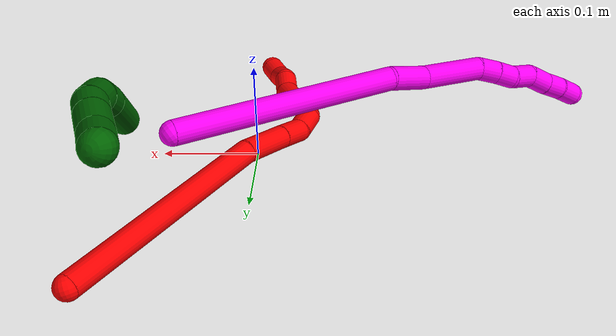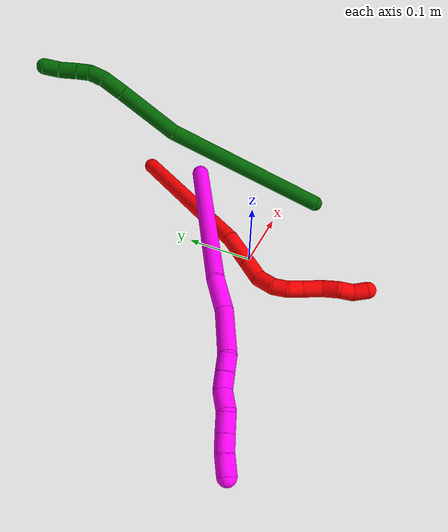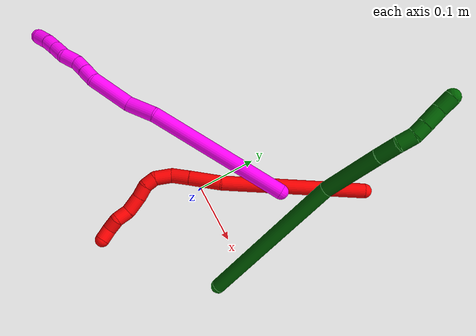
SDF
<sdf version="1.7">
 <world name="default">
  <model name="bin">
   <static>1</static>
   <link name="bottom">
    <collision name="collision-bottom">
     <pose>0 0 -0.01 0 -0 0</pose>
     <geometry><box><size>0.8 0.6 0.02</size></box></geometry>
     <surface>
      <friction><ode><mu>100</mu><mu2>100</mu2></ode></friction>
      <contact><collide_bitmask>65535</collide_bitmask></contact>
     </surface>
    </collision>
   </link>
   <link name="west_wall">
    <collision name="collision-west_wall">
     <pose>-0.41 0 0.1 0 -0 0</pose>
     <geometry><box><size>0.02 0.6 0.2</size></box></geometry>
     <surface>
      <friction><ode><mu>100</mu><mu2>100</mu2></ode></friction>
      <contact><collide_bitmask>65535</collide_bitmask></contact>
     </surface>
    </collision>
   </link>
   <link name="east_wall">
    <collision name="collision-east_wall">
     <pose>0.41 0 0.1 0 -0 0</pose>
     <geometry><box><size>0.02 0.6 0.2</size></box></geometry>
     <surface>
      <friction><ode><mu>100</mu><mu2>100</mu2></ode></friction>
      <contact><collide_bitmask>65535</collide_bitmask></contact>
     </surface>
    </collision>
   </link>
   <link name="south_wall">
    <collision name="collision-south_wall">
     <pose>0 -0.31 0.1 0 -0 0</pose>
     <geometry><box><size>0.8 0.02 0.2</size></box></geometry>
     <surface>
      <friction><ode><mu>100</mu><mu2>100</mu2></ode></friction>
      <contact><collide_bitmask>65535</collide_bitmask></contact>
     </surface>
    </collision>
   </link>
   <link name="north_wall">
    <collision name="collision-north_wall">
     <pose>0 0.31 0.1 0 -0 0</pose>
     <geometry><box><size>0.8 0.02 0.2</size></box></geometry>
     <surface>
      <friction><ode><mu>100</mu><mu2>100</mu2></ode></friction>
      <contact><collide_bitmask>65535</collide_bitmask></contact>
     </surface>
    </collision>
   </link>
  </model>
  <model name="2">
   <static>0</static>
   <link name="2">
    <collision name="collision-cylinder-e_1_1_4">
     <pose>-0.049771 -0.109582 0.021593 1.37624 -0.419204 -0.346296</pose>
     <geometry><cylinder><radius>0.0125</radius><length>0.244553</length></cylinder></geometry>
     <surface>
      <friction><ode><mu>1.16</mu><mu2>1.16</mu2><slip1>0</slip1><slip2>0</slip2></ode></friction>
      <contact><ode><kp>1e+06</kp><kd>1</kd><max_vel>0</max_vel><min_depth>0.001</min_depth></ode></contact>
     </surface>
    </collision>
    <visual name="visual-cylinder-e_1_1_4">
     <pose>-0.049771 -0.109582 0.021593 1.37624 -0.419204 -0.346296</pose>
     <geometry><cylinder><radius>0.0125</radius><length>0.244553</length></cylinder></geometry>
     <material><ambient>1 0 0 1</ambient></material>
    </visual>
    <collision name="collision-cylinder-e_2_4_5">
     <pose>-0.111362 -0.243678 0.042972 1.57953 -0.44927 -0.453077</pose>
     <geometry><cylinder><radius>0.0125</radius><length>0.054432</length></cylinder></geometry>
     <surface>
      <friction><ode><mu>1.16</mu><mu2>1.16</mu2><slip1>0</slip1><slip2>0</slip2></ode></friction>
      <contact><ode><kp>1e+06</kp><kd>1</kd><max_vel>0</max_vel><min_depth>0.001</min_depth></ode></contact>
     </surface>
    </collision>
    <visual name="visual-cylinder-e_2_4_5">
     <pose>-0.111362 -0.243678 0.042972 1.57953 -0.44927 -0.453077</pose>
     <geometry><cylinder><radius>0.0125</radius><length>0.054432</length></cylinder></geometry>
     <material><ambient>1 0 0 1</ambient></material>
    </visual>
    <collision name="collision-cylinder-e_3_5_6">
     <pose>-0.129459 -0.282551 0.042132 1.61438 -0.411803 -0.429606</pose>
     <geometry><cylinder><radius>0.0125</radius><length>0.031366</length></cylinder></geometry>
     <surface>
      <friction><ode><mu>1.16</mu><mu2>1.16</mu2><slip1>0</slip1><slip2>0</slip2></ode></friction>
      <contact><ode><kp>1e+06</kp><kd>1</kd><max_vel>0</max_vel><min_depth>0.001</min_depth></ode></contact>
     </surface>
    </collision>
    <visual name="visual-cylinder-e_3_5_6">
     <pose>-0.129459 -0.282551 0.042132 1.61438 -0.411803 -0.429606</pose>
     <geometry><cylinder><radius>0.0125</radius><length>0.031366</length></cylinder></geometry>
     <material><ambient>1 0 0 1</ambient></material>
    </visual>
    <collision name="collision-cylinder-e_4_6_7">
     <pose>-0.138969 -0.310338 0.045884 1.25558 -0.224992 -0.163612</pose>
     <geometry><cylinder><radius>0.0125</radius><length>0.028979</length></cylinder></geometry>
     <surface>
      <friction><ode><mu>1.16</mu><mu2>1.16</mu2><slip1>0</slip1><slip2>0</slip2></ode></friction>
      <contact><ode><kp>1e+06</kp><kd>1</kd><max_vel>0</max_vel><min_depth>0.001</min_depth></ode></contact>
     </surface>
    </collision>
    <visual name="visual-cylinder-e_4_6_7">
     <pose>-0.138969 -0.310338 0.045884 1.25558 -0.224992 -0.163612</pose>
     <geometry><cylinder><radius>0.0125</radius><length>0.028979</length></cylinder></geometry>
     <material><ambient>1 0 0 1</ambient></material>
    </visual>
    <collision name="collision-cylinder-e_5_7_8">
     <pose>-0.139679 -0.33277 0.05424 1.15488 0.250876 0.163944</pose>
     <geometry><cylinder><radius>0.0125</radius><length>0.020322</length></cylinder></geometry>
     <surface>
      <friction><ode><mu>1.16</mu><mu2>1.16</mu2><slip1>0</slip1><slip2>0</slip2></ode></friction>
      <contact><ode><kp>1e+06</kp><kd>1</kd><max_vel>0</max_vel><min_depth>0.001</min_depth></ode></contact>
     </surface>
    </collision>
    <visual name="visual-cylinder-e_5_7_8">
     <pose>-0.139679 -0.33277 0.05424 1.15488 0.250876 0.163944</pose>
     <geometry><cylinder><radius>0.0125</radius><length>0.020322</length></cylinder></geometry>
     <material><ambient>1 0 0 1</ambient></material>
    </visual>
    <collision name="collision-cylinder-e_6_8_9">
     <pose>-0.129922 -0.349975 0.061914 1.14727 0.677245 0.447483</pose>
     <geometry><cylinder><radius>0.0125</radius><length>0.023088</length></cylinder></geometry>
     <surface>
      <friction><ode><mu>1.16</mu><mu2>1.16</mu2><slip1>0</slip1><slip2>0</slip2></ode></friction>
      <contact><ode><kp>1e+06</kp><kd>1</kd><max_vel>0</max_vel><min_depth>0.001</min_depth></ode></contact>
     </surface>
    </collision>
    <visual name="visual-cylinder-e_6_8_9">
     <pose>-0.129922 -0.349975 0.061914 1.14727 0.677245 0.447483</pose>
     <geometry><cylinder><radius>0.0125</radius><length>0.023088</length></cylinder></geometry>
     <material><ambient>1 0 0 1</ambient></material>
    </visual>
    <collision name="collision-cylinder-e_7_9_10">
     <pose>-0.115179 -0.369531 0.072306 1.03806 0.517813 0.300326</pose>
     <geometry><cylinder><radius>0.0125</radius><length>0.030342</length></cylinder></geometry>
     <surface>
      <friction><ode><mu>1.16</mu><mu2>1.16</mu2><slip1>0</slip1><slip2>0</slip2></ode></friction>
      <contact><ode><kp>1e+06</kp><kd>1</kd><max_vel>0</max_vel><min_depth>0.001</min_depth></ode></contact>
     </surface>
    </collision>
    <visual name="visual-cylinder-e_7_9_10">
     <pose>-0.115179 -0.369531 0.072306 1.03806 0.517813 0.300326</pose>
     <geometry><cylinder><radius>0.0125</radius><length>0.030342</length></cylinder></geometry>
     <material><ambient>1 0 0 1</ambient></material>
    </visual>
    <collision name="collision-cylinder-e_8_10_11">
     <pose>-0.105845 -0.390487 0.085406 0.98252 0.156848 0.084038</pose>
     <geometry><cylinder><radius>0.0125</radius><length>0.023368</length></cylinder></geometry>
     <surface>
      <friction><ode><mu>1.16</mu><mu2>1.16</mu2><slip1>0</slip1><slip2>0</slip2></ode></friction>
      <contact><ode><kp>1e+06</kp><kd>1</kd><max_vel>0</max_vel><min_depth>0.001</min_depth></ode></contact>
     </surface>
    </collision>
    <visual name="visual-cylinder-e_8_10_11">
     <pose>-0.105845 -0.390487 0.085406 0.98252 0.156848 0.084038</pose>
     <geometry><cylinder><radius>0.0125</radius><length>0.023368</length></cylinder></geometry>
     <material><ambient>1 0 0 1</ambient></material>
    </visual>
    <collision name="collision-cylinder-e_9_11_12">
     <pose>-0.098319 -0.409054 0.093871 1.34486 0.5547 0.445812</pose>
     <geometry><cylinder><radius>0.0125</radius><length>0.021646</length></cylinder></geometry>
     <surface>
      <friction><ode><mu>1.16</mu><mu2>1.16</mu2><slip1>0</slip1><slip2>0</slip2></ode></friction>
      <contact><ode><kp>1e+06</kp><kd>1</kd><max_vel>0</max_vel><min_depth>0.001</min_depth></ode></contact>
     </surface>
    </collision>
    <visual name="visual-cylinder-e_9_11_12">
     <pose>-0.098319 -0.409054 0.093871 1.34486 0.5547 0.445812</pose>
     <geometry><cylinder><radius>0.0125</radius><length>0.021646</length></cylinder></geometry>
     <material><ambient>1 0 0 1</ambient></material>
    </visual>
    <collision name="collision-cylinder-e_10_12_2">
     <pose>-0.087256 -0.425378 0.102019 0.879609 0.511742 0.24496</pose>
     <geometry><cylinder><radius>0.0125</radius><length>0.021904</length></cylinder></geometry>
     <surface>
      <friction><ode><mu>1.16</mu><mu2>1.16</mu2><slip1>0</slip1><slip2>0</slip2></ode></friction>
      <contact><ode><kp>1e+06</kp><kd>1</kd><max_vel>0</max_vel><min_depth>0.001</min_depth></ode></contact>
     </surface>
    </collision>
    <visual name="visual-cylinder-e_10_12_2">
     <pose>-0.087256 -0.425378 0.102019 0.879609 0.511742 0.24496</pose>
     <geometry><cylinder><radius>0.0125</radius><length>0.021904</length></cylinder></geometry>
     <material><ambient>1 0 0 1</ambient></material>
    </visual>
    <collision name="collision-sphere-2">
     <pose>-0.081893 -0.432735 0.108106 0 -0 0</pose>
     <geometry><sphere><radius>0.0125</radius></sphere></geometry>
     <surface>
      <friction><ode><mu>1.16</mu><mu2>1.16</mu2><slip1>0</slip1><slip2>0</slip2></ode></friction>
      <contact><ode><kp>1e+06</kp><kd>1</kd><max_vel>0</max_vel><min_depth>0.001</min_depth></ode></contact>
     </surface>
    </collision>
    <visual name="visual-sphere-2">
     <pose>-0.081893 -0.432735 0.108106 0 -0 0</pose>
     <geometry><sphere><radius>0.0125</radius></sphere></geometry>
     <material><ambient>1 0 0 1</ambient></material>
    </visual>
    <collision name="collision-sphere-12">
     <pose>-0.092619 -0.41802 0.095932 0 -0 0</pose>
     <geometry><sphere><radius>0.0125</radius></sphere></geometry>
     <surface>
      <friction><ode><mu>1.16</mu><mu2>1.16</mu2><slip1>0</slip1><slip2>0</slip2></ode></friction>
      <contact><ode><kp>1e+06</kp><kd>1</kd><max_vel>0</max_vel><min_depth>0.001</min_depth></ode></contact>
     </surface>
    </collision>
    <visual name="visual-sphere-12">
     <pose>-0.092619 -0.41802 0.095932 0 -0 0</pose>
     <geometry><sphere><radius>0.0125</radius></sphere></geometry>
     <material><ambient>1 0 0 1</ambient></material>
    </visual>
    <collision name="collision-sphere-11">
     <pose>-0.10402 -0.400087 0.09181 0 -0 0</pose>
     <geometry><sphere><radius>0.0125</radius></sphere></geometry>
     <surface>
      <friction><ode><mu>1.16</mu><mu2>1.16</mu2><slip1>0</slip1><slip2>0</slip2></ode></friction>
      <contact><ode><kp>1e+06</kp><kd>1</kd><max_vel>0</max_vel><min_depth>0.001</min_depth></ode></contact>
     </surface>
    </collision>
    <visual name="visual-sphere-11">
     <pose>-0.10402 -0.400087 0.09181 0 -0 0</pose>
     <geometry><sphere><radius>0.0125</radius></sphere></geometry>
     <material><ambient>1 0 0 1</ambient></material>
    </visual>
    <collision name="collision-sphere-10">
     <pose>-0.10767 -0.380886 0.079001 0 -0 0</pose>
     <geometry><sphere><radius>0.0125</radius></sphere></geometry>
     <surface>
      <friction><ode><mu>1.16</mu><mu2>1.16</mu2><slip1>0</slip1><slip2>0</slip2></ode></friction>
      <contact><ode><kp>1e+06</kp><kd>1</kd><max_vel>0</max_vel><min_depth>0.001</min_depth></ode></contact>
     </surface>
    </collision>
    <visual name="visual-sphere-10">
     <pose>-0.10767 -0.380886 0.079001 0 -0 0</pose>
     <geometry><sphere><radius>0.0125</radius></sphere></geometry>
     <material><ambient>1 0 0 1</ambient></material>
    </visual>
    <collision name="collision-sphere-9">
     <pose>-0.122688 -0.358176 0.065611 0 -0 0</pose>
     <geometry><sphere><radius>0.0125</radius></sphere></geometry>
     <surface>
      <friction><ode><mu>1.16</mu><mu2>1.16</mu2><slip1>0</slip1><slip2>0</slip2></ode></friction>
      <contact><ode><kp>1e+06</kp><kd>1</kd><max_vel>0</max_vel><min_depth>0.001</min_depth></ode></contact>
     </surface>
    </collision>
    <visual name="visual-sphere-9">
     <pose>-0.122688 -0.358176 0.065611 0 -0 0</pose>
     <geometry><sphere><radius>0.0125</radius></sphere></geometry>
     <material><ambient>1 0 0 1</ambient></material>
    </visual>
    <collision name="collision-sphere-4">
     <pose>-0.099541 -0.219164 0.043186 0 -0 0</pose>
     <geometry><sphere><radius>0.0125</radius></sphere></geometry>
     <surface>
      <friction><ode><mu>1.16</mu><mu2>1.16</mu2><slip1>0</slip1><slip2>0</slip2></ode></friction>
      <contact><ode><kp>1e+06</kp><kd>1</kd><max_vel>0</max_vel><min_depth>0.001</min_depth></ode></contact>
     </surface>
    </collision>
    <visual name="visual-sphere-4">
     <pose>-0.099541 -0.219164 0.043186 0 -0 0</pose>
     <geometry><sphere><radius>0.0125</radius></sphere></geometry>
     <material><ambient>1 0 0 1</ambient></material>
    </visual>
    <collision name="collision-sphere-1">
     <geometry><sphere><radius>0.0125</radius></sphere></geometry>
     <surface>
      <friction><ode><mu>1.16</mu><mu2>1.16</mu2><slip1>0</slip1><slip2>0</slip2></ode></friction>
      <contact><ode><kp>1e+06</kp><kd>1</kd><max_vel>0</max_vel><min_depth>0.001</min_depth></ode></contact>
     </surface>
    </collision>
    <visual name="visual-sphere-1">
     <geometry><sphere><radius>0.0125</radius></sphere></geometry>
     <material><ambient>1 0 0 1</ambient></material>
    </visual>
    <collision name="collision-sphere-8">
     <pose>-0.137156 -0.341773 0.058217 0 -0 0</pose>
     <geometry><sphere><radius>0.0125</radius></sphere></geometry>
     <surface>
      <friction><ode><mu>1.16</mu><mu2>1.16</mu2><slip1>0</slip1><slip2>0</slip2></ode></friction>
      <contact><ode><kp>1e+06</kp><kd>1</kd><max_vel>0</max_vel><min_depth>0.001</min_depth></ode></contact>
     </surface>
    </collision>
    <visual name="visual-sphere-8">
     <pose>-0.137156 -0.341773 0.058217 0 -0 0</pose>
     <geometry><sphere><radius>0.0125</radius></sphere></geometry>
     <material><ambient>1 0 0 1</ambient></material>
    </visual>
    <collision name="collision-sphere-5">
     <pose>-0.123182 -0.268193 0.042758 0 -0 0</pose>
     <geometry><sphere><radius>0.0125</radius></sphere></geometry>
     <surface>
      <friction><ode><mu>1.16</mu><mu2>1.16</mu2><slip1>0</slip1><slip2>0</slip2></ode></friction>
      <contact><ode><kp>1e+06</kp><kd>1</kd><max_vel>0</max_vel><min_depth>0.001</min_depth></ode></contact>
     </surface>
    </collision>
    <visual name="visual-sphere-5">
     <pose>-0.123182 -0.268193 0.042758 0 -0 0</pose>
     <geometry><sphere><radius>0.0125</radius></sphere></geometry>
     <material><ambient>1 0 0 1</ambient></material>
    </visual>
    <collision name="collision-sphere-6">
     <pose>-0.135736 -0.296909 0.041506 0 -0 0</pose>
     <geometry><sphere><radius>0.0125</radius></sphere></geometry>
     <surface>
      <friction><ode><mu>1.16</mu><mu2>1.16</mu2><slip1>0</slip1><slip2>0</slip2></ode></friction>
      <contact><ode><kp>1e+06</kp><kd>1</kd><max_vel>0</max_vel><min_depth>0.001</min_depth></ode></contact>
     </surface>
    </collision>
    <visual name="visual-sphere-6">
     <pose>-0.135736 -0.296909 0.041506 0 -0 0</pose>
     <geometry><sphere><radius>0.0125</radius></sphere></geometry>
     <material><ambient>1 0 0 1</ambient></material>
    </visual>
    <collision name="collision-sphere-7">
     <pose>-0.142201 -0.323766 0.050263 0 -0 0</pose>
     <geometry><sphere><radius>0.0125</radius></sphere></geometry>
     <surface>
      <friction><ode><mu>1.16</mu><mu2>1.16</mu2><slip1>0</slip1><slip2>0</slip2></ode></friction>
      <contact><ode><kp>1e+06</kp><kd>1</kd><max_vel>0</max_vel><min_depth>0.001</min_depth></ode></contact>
     </surface>
    </collision>
    <visual name="visual-sphere-7">
     <pose>-0.142201 -0.323766 0.050263 0 -0 0</pose>
     <geometry><sphere><radius>0.0125</radius></sphere></geometry>
     <material><ambient>1 0 0 1</ambient></material>
    </visual>
    <inertial>
     <pose>-0.084334 -0.22254 0.042518 0 -0 0</pose>
     <mass>0.5</mass>
     <inertia>
      <ixx>0.000692</ixx>
      <ixy>0</ixy>
      <ixz>0</ixz>
      <iyy>-1.8e-05</iyy>
      <iyz>0</iyz>
      <izz>0.001643</izz>
     </inertia>
    </inertial>
   </link>
   <pose>0.134981 0.244804 0.01251 0.298149 0.329727 -0.116699</pose>
  </model>
  <model name="6">
   <static>0</static>
   <link name="6">
    <collision name="collision-cylinder-e_1_1_4">
     <pose>0.003243 0.071921 0.111837 -0.5715 0.024384 -0.007164</pose>
     <geometry><cylinder><radius>0.0125</radius><length>0.266012</length></cylinder></geometry>
     <surface>
      <friction><ode><mu>1.16</mu><mu2>1.16</mu2><slip1>0</slip1><slip2>0</slip2></ode></friction>
      <contact><ode><kp>1e+06</kp><kd>1</kd><max_vel>0</max_vel><min_depth>0.001</min_depth></ode></contact>
     </surface>
    </collision>
    <visual name="visual-cylinder-e_1_1_4">
     <pose>0.003243 0.071921 0.111837 -0.5715 0.024384 -0.007164</pose>
     <geometry><cylinder><radius>0.0125</radius><length>0.266012</length></cylinder></geometry>
     <material><ambient>0 0.392157 0.003922 1</ambient></material>
    </visual>
    <collision name="collision-cylinder-e_2_4_5">
     <pose>-0.000664 0.166642 0.267915 -0.475862 -0.142674 0.034657</pose>
     <geometry><cylinder><radius>0.0125</radius><length>0.100563</length></cylinder></geometry>
     <surface>
      <friction><ode><mu>1.16</mu><mu2>1.16</mu2><slip1>0</slip1><slip2>0</slip2></ode></friction>
      <contact><ode><kp>1e+06</kp><kd>1</kd><max_vel>0</max_vel><min_depth>0.001</min_depth></ode></contact>
     </surface>
    </collision>
    <visual name="visual-cylinder-e_2_4_5">
     <pose>-0.000664 0.166642 0.267915 -0.475862 -0.142674 0.034657</pose>
     <geometry><cylinder><radius>0.0125</radius><length>0.100563</length></cylinder></geometry>
     <material><ambient>0 0.392157 0.003922 1</ambient></material>
    </visual>
    <collision name="collision-cylinder-e_3_5_6">
     <pose>-0.009691 0.196817 0.327923 -0.437506 -0.107476 0.023915</pose>
     <geometry><cylinder><radius>0.0125</radius><length>0.035013</length></cylinder></geometry>
     <surface>
      <friction><ode><mu>1.16</mu><mu2>1.16</mu2><slip1>0</slip1><slip2>0</slip2></ode></friction>
      <contact><ode><kp>1e+06</kp><kd>1</kd><max_vel>0</max_vel><min_depth>0.001</min_depth></ode></contact>
     </surface>
    </collision>
    <visual name="visual-cylinder-e_3_5_6">
     <pose>-0.009691 0.196817 0.327923 -0.437506 -0.107476 0.023915</pose>
     <geometry><cylinder><radius>0.0125</radius><length>0.035013</length></cylinder></geometry>
     <material><ambient>0 0.392157 0.003922 1</ambient></material>
    </visual>
    <collision name="collision-cylinder-e_4_6_7">
     <pose>-0.009368 0.207479 0.355462 -0.272346 0.178189 -0.024479</pose>
     <geometry><cylinder><radius>0.0125</radius><length>0.024841</length></cylinder></geometry>
     <surface>
      <friction><ode><mu>1.16</mu><mu2>1.16</mu2><slip1>0</slip1><slip2>0</slip2></ode></friction>
      <contact><ode><kp>1e+06</kp><kd>1</kd><max_vel>0</max_vel><min_depth>0.001</min_depth></ode></contact>
     </surface>
    </collision>
    <visual name="visual-cylinder-e_4_6_7">
     <pose>-0.009368 0.207479 0.355462 -0.272346 0.178189 -0.024479</pose>
     <geometry><cylinder><radius>0.0125</radius><length>0.024841</length></cylinder></geometry>
     <material><ambient>0 0.392157 0.003922 1</ambient></material>
    </visual>
    <collision name="collision-cylinder-e_5_7_8">
     <pose>-0.003009 0.215142 0.375391 -0.492372 0.422174 -0.107586</pose>
     <geometry><cylinder><radius>0.0125</radius><length>0.020292</length></cylinder></geometry>
     <surface>
      <friction><ode><mu>1.16</mu><mu2>1.16</mu2><slip1>0</slip1><slip2>0</slip2></ode></friction>
      <contact><ode><kp>1e+06</kp><kd>1</kd><max_vel>0</max_vel><min_depth>0.001</min_depth></ode></contact>
     </surface>
    </collision>
    <visual name="visual-cylinder-e_5_7_8">
     <pose>-0.003009 0.215142 0.375391 -0.492372 0.422174 -0.107586</pose>
     <geometry><cylinder><radius>0.0125</radius><length>0.020292</length></cylinder></geometry>
     <material><ambient>0 0.392157 0.003922 1</ambient></material>
    </visual>
    <collision name="collision-cylinder-e_6_8_9">
     <pose>0.007542 0.225549 0.394651 -0.497595 0.46845 -0.121092</pose>
     <geometry><cylinder><radius>0.0125</radius><length>0.028323</length></cylinder></geometry>
     <surface>
      <friction><ode><mu>1.16</mu><mu2>1.16</mu2><slip1>0</slip1><slip2>0</slip2></ode></friction>
      <contact><ode><kp>1e+06</kp><kd>1</kd><max_vel>0</max_vel><min_depth>0.001</min_depth></ode></contact>
     </surface>
    </collision>
    <visual name="visual-cylinder-e_6_8_9">
     <pose>0.007542 0.225549 0.394651 -0.497595 0.46845 -0.121092</pose>
     <geometry><cylinder><radius>0.0125</radius><length>0.028323</length></cylinder></geometry>
     <material><ambient>0 0.392157 0.003922 1</ambient></material>
    </visual>
    <collision name="collision-cylinder-e_7_9_2">
     <pose>0.017835 0.237332 0.416118 -0.506682 0.317751 -0.082919</pose>
     <geometry><cylinder><radius>0.0125</radius><length>0.024955</length></cylinder></geometry>
     <surface>
      <friction><ode><mu>1.16</mu><mu2>1.16</mu2><slip1>0</slip1><slip2>0</slip2></ode></friction>
      <contact><ode><kp>1e+06</kp><kd>1</kd><max_vel>0</max_vel><min_depth>0.001</min_depth></ode></contact>
     </surface>
    </collision>
    <visual name="visual-cylinder-e_7_9_2">
     <pose>0.017835 0.237332 0.416118 -0.506682 0.317751 -0.082919</pose>
     <geometry><cylinder><radius>0.0125</radius><length>0.024955</length></cylinder></geometry>
     <material><ambient>0 0.392157 0.003922 1</ambient></material>
    </visual>
    <collision name="collision-sphere-2">
     <pose>0.021733 0.243084 0.426481 0 -0 0</pose>
     <geometry><sphere><radius>0.0125</radius></sphere></geometry>
     <surface>
      <friction><ode><mu>1.16</mu><mu2>1.16</mu2><slip1>0</slip1><slip2>0</slip2></ode></friction>
      <contact><ode><kp>1e+06</kp><kd>1</kd><max_vel>0</max_vel><min_depth>0.001</min_depth></ode></contact>
     </surface>
    </collision>
    <visual name="visual-sphere-2">
     <pose>0.021733 0.243084 0.426481 0 -0 0</pose>
     <geometry><sphere><radius>0.0125</radius></sphere></geometry>
     <material><ambient>0 0.392157 0.003922 1</ambient></material>
    </visual>
    <collision name="collision-sphere-9">
     <pose>0.013936 0.23158 0.405754 0 -0 0</pose>
     <geometry><sphere><radius>0.0125</radius></sphere></geometry>
     <surface>
      <friction><ode><mu>1.16</mu><mu2>1.16</mu2><slip1>0</slip1><slip2>0</slip2></ode></friction>
      <contact><ode><kp>1e+06</kp><kd>1</kd><max_vel>0</max_vel><min_depth>0.001</min_depth></ode></contact>
     </surface>
    </collision>
    <visual name="visual-sphere-9">
     <pose>0.013936 0.23158 0.405754 0 -0 0</pose>
     <geometry><sphere><radius>0.0125</radius></sphere></geometry>
     <material><ambient>0 0.392157 0.003922 1</ambient></material>
    </visual>
    <collision name="collision-sphere-4">
     <pose>0.006486 0.143842 0.223674 0 -0 0</pose>
     <geometry><sphere><radius>0.0125</radius></sphere></geometry>
     <surface>
      <friction><ode><mu>1.16</mu><mu2>1.16</mu2><slip1>0</slip1><slip2>0</slip2></ode></friction>
      <contact><ode><kp>1e+06</kp><kd>1</kd><max_vel>0</max_vel><min_depth>0.001</min_depth></ode></contact>
     </surface>
    </collision>
    <visual name="visual-sphere-4">
     <pose>0.006486 0.143842 0.223674 0 -0 0</pose>
     <geometry><sphere><radius>0.0125</radius></sphere></geometry>
     <material><ambient>0 0.392157 0.003922 1</ambient></material>
    </visual>
    <collision name="collision-sphere-1">
     <geometry><sphere><radius>0.0125</radius></sphere></geometry>
     <surface>
      <friction><ode><mu>1.16</mu><mu2>1.16</mu2><slip1>0</slip1><slip2>0</slip2></ode></friction>
      <contact><ode><kp>1e+06</kp><kd>1</kd><max_vel>0</max_vel><min_depth>0.001</min_depth></ode></contact>
     </surface>
    </collision>
    <visual name="visual-sphere-1">
     <geometry><sphere><radius>0.0125</radius></sphere></geometry>
     <material><ambient>0 0.392157 0.003922 1</ambient></material>
    </visual>
    <collision name="collision-sphere-8">
     <pose>0.001148 0.219518 0.383547 0 -0 0</pose>
     <geometry><sphere><radius>0.0125</radius></sphere></geometry>
     <surface>
      <friction><ode><mu>1.16</mu><mu2>1.16</mu2><slip1>0</slip1><slip2>0</slip2></ode></friction>
      <contact><ode><kp>1e+06</kp><kd>1</kd><max_vel>0</max_vel><min_depth>0.001</min_depth></ode></contact>
     </surface>
    </collision>
    <visual name="visual-sphere-8">
     <pose>0.001148 0.219518 0.383547 0 -0 0</pose>
     <geometry><sphere><radius>0.0125</radius></sphere></geometry>
     <material><ambient>0 0.392157 0.003922 1</ambient></material>
    </visual>
    <collision name="collision-sphere-5">
     <pose>-0.007813 0.189442 0.312156 0 -0 0</pose>
     <geometry><sphere><radius>0.0125</radius></sphere></geometry>
     <surface>
      <friction><ode><mu>1.16</mu><mu2>1.16</mu2><slip1>0</slip1><slip2>0</slip2></ode></friction>
      <contact><ode><kp>1e+06</kp><kd>1</kd><max_vel>0</max_vel><min_depth>0.001</min_depth></ode></contact>
     </surface>
    </collision>
    <visual name="visual-sphere-5">
     <pose>-0.007813 0.189442 0.312156 0 -0 0</pose>
     <geometry><sphere><radius>0.0125</radius></sphere></geometry>
     <material><ambient>0 0.392157 0.003922 1</ambient></material>
    </visual>
    <collision name="collision-sphere-6">
     <pose>-0.011569 0.204191 0.343689 0 -0 0</pose>
     <geometry><sphere><radius>0.0125</radius></sphere></geometry>
     <surface>
      <friction><ode><mu>1.16</mu><mu2>1.16</mu2><slip1>0</slip1><slip2>0</slip2></ode></friction>
      <contact><ode><kp>1e+06</kp><kd>1</kd><max_vel>0</max_vel><min_depth>0.001</min_depth></ode></contact>
     </surface>
    </collision>
    <visual name="visual-sphere-6">
     <pose>-0.011569 0.204191 0.343689 0 -0 0</pose>
     <geometry><sphere><radius>0.0125</radius></sphere></geometry>
     <material><ambient>0 0.392157 0.003922 1</ambient></material>
    </visual>
    <collision name="collision-sphere-7">
     <pose>-0.007166 0.210767 0.367235 0 -0 0</pose>
     <geometry><sphere><radius>0.0125</radius></sphere></geometry>
     <surface>
      <friction><ode><mu>1.16</mu><mu2>1.16</mu2><slip1>0</slip1><slip2>0</slip2></ode></friction>
      <contact><ode><kp>1e+06</kp><kd>1</kd><max_vel>0</max_vel><min_depth>0.001</min_depth></ode></contact>
     </surface>
    </collision>
    <visual name="visual-sphere-7">
     <pose>-0.007166 0.210767 0.367235 0 -0 0</pose>
     <geometry><sphere><radius>0.0125</radius></sphere></geometry>
     <material><ambient>0 0.392157 0.003922 1</ambient></material>
    </visual>
    <inertial>
     <pose>0.001643 0.129223 0.212367 0 -0 0</pose>
     <mass>0.5</mass>
     <inertia>
      <ixx>0.001672</ixx>
      <ixy>0</ixy>
      <ixz>0</ixz>
      <iyy>0.00143</iyy>
      <iyz>0</iyz>
      <izz>-0.000895</izz>
     </inertia>
    </inertial>
   </link>
   <pose>0.161289 -0.051248 0.011498 0.942166 1.03719 2.29837</pose>
  </model>
  <model name="10">
   <static>0</static>
   <link name="10">
    <collision name="collision-cylinder-e_1_1_4">
     <pose>-0.046065 -0.027526 0.10469 0.257114 -0.402338 -0.052711</pose>
     <geometry><cylinder><radius>0.0125</radius><length>0.235284</length></cylinder></geometry>
     <surface>
      <friction><ode><mu>1.16</mu><mu2>1.16</mu2><slip1>0</slip1><slip2>0</slip2></ode></friction>
      <contact><ode><kp>1e+06</kp><kd>1</kd><max_vel>0</max_vel><min_depth>0.001</min_depth></ode></contact>
     </surface>
    </collision>
    <visual name="visual-cylinder-e_1_1_4">
     <pose>-0.046065 -0.027526 0.10469 0.257114 -0.402338 -0.052711</pose>
     <geometry><cylinder><radius>0.0125</radius><length>0.235284</length></cylinder></geometry>
     <material><ambient>1 0 0.964706 1</ambient></material>
    </visual>
    <collision name="collision-cylinder-e_2_4_5">
     <pose>-0.105011 -0.065558 0.226874 0.540769 -0.563059 -0.15998</pose>
     <geometry><cylinder><radius>0.0125</radius><length>0.048264</length></cylinder></geometry>
     <surface>
      <friction><ode><mu>1.16</mu><mu2>1.16</mu2><slip1>0</slip1><slip2>0</slip2></ode></friction>
      <contact><ode><kp>1e+06</kp><kd>1</kd><max_vel>0</max_vel><min_depth>0.001</min_depth></ode></contact>
     </surface>
    </collision>
    <visual name="visual-cylinder-e_2_4_5">
     <pose>-0.105011 -0.065558 0.226874 0.540769 -0.563059 -0.15998</pose>
     <geometry><cylinder><radius>0.0125</radius><length>0.048264</length></cylinder></geometry>
     <material><ambient>1 0 0.964706 1</ambient></material>
    </visual>
    <collision name="collision-cylinder-e_3_5_6">
     <pose>-0.133935 -0.083057 0.274897 0.225197 -0.473379 -0.054537</pose>
     <geometry><cylinder><radius>0.0125</radius><length>0.070377</length></cylinder></geometry>
     <surface>
      <friction><ode><mu>1.16</mu><mu2>1.16</mu2><slip1>0</slip1><slip2>0</slip2></ode></friction>
      <contact><ode><kp>1e+06</kp><kd>1</kd><max_vel>0</max_vel><min_depth>0.001</min_depth></ode></contact>
     </surface>
    </collision>
    <visual name="visual-cylinder-e_3_5_6">
     <pose>-0.133935 -0.083057 0.274897 0.225197 -0.473379 -0.054537</pose>
     <geometry><cylinder><radius>0.0125</radius><length>0.070377</length></cylinder></geometry>
     <material><ambient>1 0 0.964706 1</ambient></material>
    </visual>
    <collision name="collision-cylinder-e_4_6_7">
     <pose>-0.158335 -0.091249 0.313462 0.148083 -0.799442 -0.062654</pose>
     <geometry><cylinder><radius>0.0125</radius><length>0.023313</length></cylinder></geometry>
     <surface>
      <friction><ode><mu>1.16</mu><mu2>1.16</mu2><slip1>0</slip1><slip2>0</slip2></ode></friction>
      <contact><ode><kp>1e+06</kp><kd>1</kd><max_vel>0</max_vel><min_depth>0.001</min_depth></ode></contact>
     </surface>
    </collision>
    <visual name="visual-cylinder-e_4_6_7">
     <pose>-0.158335 -0.091249 0.313462 0.148083 -0.799442 -0.062654</pose>
     <geometry><cylinder><radius>0.0125</radius><length>0.023313</length></cylinder></geometry>
     <material><ambient>1 0 0.964706 1</ambient></material>
    </visual>
    <collision name="collision-cylinder-e_5_7_8">
     <pose>-0.17493 -0.093841 0.328447 0.197885 -0.860405 -0.091037</pose>
     <geometry><cylinder><radius>0.0125</radius><length>0.021733</length></cylinder></geometry>
     <surface>
      <friction><ode><mu>1.16</mu><mu2>1.16</mu2><slip1>0</slip1><slip2>0</slip2></ode></friction>
      <contact><ode><kp>1e+06</kp><kd>1</kd><max_vel>0</max_vel><min_depth>0.001</min_depth></ode></contact>
     </surface>
    </collision>
    <visual name="visual-cylinder-e_5_7_8">
     <pose>-0.17493 -0.093841 0.328447 0.197885 -0.860405 -0.091037</pose>
     <geometry><cylinder><radius>0.0125</radius><length>0.021733</length></cylinder></geometry>
     <material><ambient>1 0 0.964706 1</ambient></material>
    </visual>
    <collision name="collision-cylinder-e_6_8_9">
     <pose>-0.190151 -0.099842 0.345944 0.411825 -0.54528 -0.11667</pose>
     <geometry><cylinder><radius>0.0125</radius><length>0.026926</length></cylinder></geometry>
     <surface>
      <friction><ode><mu>1.16</mu><mu2>1.16</mu2><slip1>0</slip1><slip2>0</slip2></ode></friction>
      <contact><ode><kp>1e+06</kp><kd>1</kd><max_vel>0</max_vel><min_depth>0.001</min_depth></ode></contact>
     </surface>
    </collision>
    <visual name="visual-cylinder-e_6_8_9">
     <pose>-0.190151 -0.099842 0.345944 0.411825 -0.54528 -0.11667</pose>
     <geometry><cylinder><radius>0.0125</radius><length>0.026926</length></cylinder></geometry>
     <material><ambient>1 0 0.964706 1</ambient></material>
    </visual>
    <collision name="collision-cylinder-e_7_9_10">
     <pose>-0.207473 -0.107412 0.363342 0.408216 -0.945613 -0.210966</pose>
     <geometry><cylinder><radius>0.0125</radius><length>0.025502</length></cylinder></geometry>
     <surface>
      <friction><ode><mu>1.16</mu><mu2>1.16</mu2><slip1>0</slip1><slip2>0</slip2></ode></friction>
      <contact><ode><kp>1e+06</kp><kd>1</kd><max_vel>0</max_vel><min_depth>0.001</min_depth></ode></contact>
     </surface>
    </collision>
    <visual name="visual-cylinder-e_7_9_10">
     <pose>-0.207473 -0.107412 0.363342 0.408216 -0.945613 -0.210966</pose>
     <geometry><cylinder><radius>0.0125</radius><length>0.025502</length></cylinder></geometry>
     <material><ambient>1 0 0.964706 1</ambient></material>
    </visual>
    <collision name="collision-cylinder-e_8_10_11">
     <pose>-0.226252 -0.112956 0.377003 0.362303 -0.858704 -0.167323</pose>
     <geometry><cylinder><radius>0.0125</radius><length>0.022299</length></cylinder></geometry>
     <surface>
      <friction><ode><mu>1.16</mu><mu2>1.16</mu2><slip1>0</slip1><slip2>0</slip2></ode></friction>
      <contact><ode><kp>1e+06</kp><kd>1</kd><max_vel>0</max_vel><min_depth>0.001</min_depth></ode></contact>
     </surface>
    </collision>
    <visual name="visual-cylinder-e_8_10_11">
     <pose>-0.226252 -0.112956 0.377003 0.362303 -0.858704 -0.167323</pose>
     <geometry><cylinder><radius>0.0125</radius><length>0.022299</length></cylinder></geometry>
     <material><ambient>1 0 0.964706 1</ambient></material>
    </visual>
    <collision name="collision-cylinder-e_9_11_2">
     <pose>-0.244636 -0.120485 0.390858 0.612272 -0.85739 -0.286932</pose>
     <geometry><cylinder><radius>0.0125</radius><length>0.026301</length></cylinder></geometry>
     <surface>
      <friction><ode><mu>1.16</mu><mu2>1.16</mu2><slip1>0</slip1><slip2>0</slip2></ode></friction>
      <contact><ode><kp>1e+06</kp><kd>1</kd><max_vel>0</max_vel><min_depth>0.001</min_depth></ode></contact>
     </surface>
    </collision>
    <visual name="visual-cylinder-e_9_11_2">
     <pose>-0.244636 -0.120485 0.390858 0.612272 -0.85739 -0.286932</pose>
     <geometry><cylinder><radius>0.0125</radius><length>0.026301</length></cylinder></geometry>
     <material><ambient>1 0 0.964706 1</ambient></material>
    </visual>
    <collision name="collision-sphere-2">
     <pose>-0.25458 -0.125431 0.397901 0 -0 0</pose>
     <geometry><sphere><radius>0.0125</radius></sphere></geometry>
     <surface>
      <friction><ode><mu>1.16</mu><mu2>1.16</mu2><slip1>0</slip1><slip2>0</slip2></ode></friction>
      <contact><ode><kp>1e+06</kp><kd>1</kd><max_vel>0</max_vel><min_depth>0.001</min_depth></ode></contact>
     </surface>
    </collision>
    <visual name="visual-sphere-2">
     <pose>-0.25458 -0.125431 0.397901 0 -0 0</pose>
     <geometry><sphere><radius>0.0125</radius></sphere></geometry>
     <material><ambient>1 0 0.964706 1</ambient></material>
    </visual>
    <collision name="collision-sphere-11">
     <pose>-0.234692 -0.115539 0.383816 0 -0 0</pose>
     <geometry><sphere><radius>0.0125</radius></sphere></geometry>
     <surface>
      <friction><ode><mu>1.16</mu><mu2>1.16</mu2><slip1>0</slip1><slip2>0</slip2></ode></friction>
      <contact><ode><kp>1e+06</kp><kd>1</kd><max_vel>0</max_vel><min_depth>0.001</min_depth></ode></contact>
     </surface>
    </collision>
    <visual name="visual-sphere-11">
     <pose>-0.234692 -0.115539 0.383816 0 -0 0</pose>
     <geometry><sphere><radius>0.0125</radius></sphere></geometry>
     <material><ambient>1 0 0.964706 1</ambient></material>
    </visual>
    <collision name="collision-sphere-10">
     <pose>-0.217812 -0.110374 0.370191 0 -0 0</pose>
     <geometry><sphere><radius>0.0125</radius></sphere></geometry>
     <surface>
      <friction><ode><mu>1.16</mu><mu2>1.16</mu2><slip1>0</slip1><slip2>0</slip2></ode></friction>
      <contact><ode><kp>1e+06</kp><kd>1</kd><max_vel>0</max_vel><min_depth>0.001</min_depth></ode></contact>
     </surface>
    </collision>
    <visual name="visual-sphere-10">
     <pose>-0.217812 -0.110374 0.370191 0 -0 0</pose>
     <geometry><sphere><radius>0.0125</radius></sphere></geometry>
     <material><ambient>1 0 0.964706 1</ambient></material>
    </visual>
    <collision name="collision-sphere-9">
     <pose>-0.197134 -0.104449 0.356492 0 -0 0</pose>
     <geometry><sphere><radius>0.0125</radius></sphere></geometry>
     <surface>
      <friction><ode><mu>1.16</mu><mu2>1.16</mu2><slip1>0</slip1><slip2>0</slip2></ode></friction>
      <contact><ode><kp>1e+06</kp><kd>1</kd><max_vel>0</max_vel><min_depth>0.001</min_depth></ode></contact>
     </surface>
    </collision>
    <visual name="visual-sphere-9">
     <pose>-0.197134 -0.104449 0.356492 0 -0 0</pose>
     <geometry><sphere><radius>0.0125</radius></sphere></geometry>
     <material><ambient>1 0 0.964706 1</ambient></material>
    </visual>
    <collision name="collision-sphere-4">
     <pose>-0.09213 -0.055053 0.209379 0 -0 0</pose>
     <geometry><sphere><radius>0.0125</radius></sphere></geometry>
     <surface>
      <friction><ode><mu>1.16</mu><mu2>1.16</mu2><slip1>0</slip1><slip2>0</slip2></ode></friction>
      <contact><ode><kp>1e+06</kp><kd>1</kd><max_vel>0</max_vel><min_depth>0.001</min_depth></ode></contact>
     </surface>
    </collision>
    <visual name="visual-sphere-4">
     <pose>-0.09213 -0.055053 0.209379 0 -0 0</pose>
     <geometry><sphere><radius>0.0125</radius></sphere></geometry>
     <material><ambient>1 0 0.964706 1</ambient></material>
    </visual>
    <collision name="collision-sphere-1">
     <geometry><sphere><radius>0.0125</radius></sphere></geometry>
     <surface>
      <friction><ode><mu>1.16</mu><mu2>1.16</mu2><slip1>0</slip1><slip2>0</slip2></ode></friction>
      <contact><ode><kp>1e+06</kp><kd>1</kd><max_vel>0</max_vel><min_depth>0.001</min_depth></ode></contact>
     </surface>
    </collision>
    <visual name="visual-sphere-1">
     <geometry><sphere><radius>0.0125</radius></sphere></geometry>
     <material><ambient>1 0 0.964706 1</ambient></material>
    </visual>
    <collision name="collision-sphere-8">
     <pose>-0.183168 -0.095234 0.335396 0 -0 0</pose>
     <geometry><sphere><radius>0.0125</radius></sphere></geometry>
     <surface>
      <friction><ode><mu>1.16</mu><mu2>1.16</mu2><slip1>0</slip1><slip2>0</slip2></ode></friction>
      <contact><ode><kp>1e+06</kp><kd>1</kd><max_vel>0</max_vel><min_depth>0.001</min_depth></ode></contact>
     </surface>
    </collision>
    <visual name="visual-sphere-8">
     <pose>-0.183168 -0.095234 0.335396 0 -0 0</pose>
     <geometry><sphere><radius>0.0125</radius></sphere></geometry>
     <material><ambient>1 0 0.964706 1</ambient></material>
    </visual>
    <collision name="collision-sphere-5">
     <pose>-0.117892 -0.076063 0.244369 0 -0 0</pose>
     <geometry><sphere><radius>0.0125</radius></sphere></geometry>
     <surface>
      <friction><ode><mu>1.16</mu><mu2>1.16</mu2><slip1>0</slip1><slip2>0</slip2></ode></friction>
      <contact><ode><kp>1e+06</kp><kd>1</kd><max_vel>0</max_vel><min_depth>0.001</min_depth></ode></contact>
     </surface>
    </collision>
    <visual name="visual-sphere-5">
     <pose>-0.117892 -0.076063 0.244369 0 -0 0</pose>
     <geometry><sphere><radius>0.0125</radius></sphere></geometry>
     <material><ambient>1 0 0.964706 1</ambient></material>
    </visual>
    <collision name="collision-sphere-6">
     <pose>-0.149977 -0.09005 0.305425 0 -0 0</pose>
     <geometry><sphere><radius>0.0125</radius></sphere></geometry>
     <surface>
      <friction><ode><mu>1.16</mu><mu2>1.16</mu2><slip1>0</slip1><slip2>0</slip2></ode></friction>
      <contact><ode><kp>1e+06</kp><kd>1</kd><max_vel>0</max_vel><min_depth>0.001</min_depth></ode></contact>
     </surface>
    </collision>
    <visual name="visual-sphere-6">
     <pose>-0.149977 -0.09005 0.305425 0 -0 0</pose>
     <geometry><sphere><radius>0.0125</radius></sphere></geometry>
     <material><ambient>1 0 0.964706 1</ambient></material>
    </visual>
    <collision name="collision-sphere-7">
     <pose>-0.166692 -0.092448 0.321499 0 -0 0</pose>
     <geometry><sphere><radius>0.0125</radius></sphere></geometry>
     <surface>
      <friction><ode><mu>1.16</mu><mu2>1.16</mu2><slip1>0</slip1><slip2>0</slip2></ode></friction>
      <contact><ode><kp>1e+06</kp><kd>1</kd><max_vel>0</max_vel><min_depth>0.001</min_depth></ode></contact>
     </surface>
    </collision>
    <visual name="visual-sphere-7">
     <pose>-0.166692 -0.092448 0.321499 0 -0 0</pose>
     <geometry><sphere><radius>0.0125</radius></sphere></geometry>
     <material><ambient>1 0 0.964706 1</ambient></material>
    </visual>
    <inertial>
     <pose>-0.109432 -0.061536 0.213284 0 -0 0</pose>
     <mass>0.5</mass>
     <inertia>
      <ixx>0.000975</ixx>
      <ixy>0</ixy>
      <ixz>0</ixz>
      <iyy>0.001049</iyy>
      <iyz>0</iyz>
      <izz>0.00076</izz>
     </inertia>
    </inertial>
   </link>
   <pose>0.06344 0.11444 0.086756 0.610945 -0.992194 -0.244902</pose>
  </model>
 </world>
</sdf>
